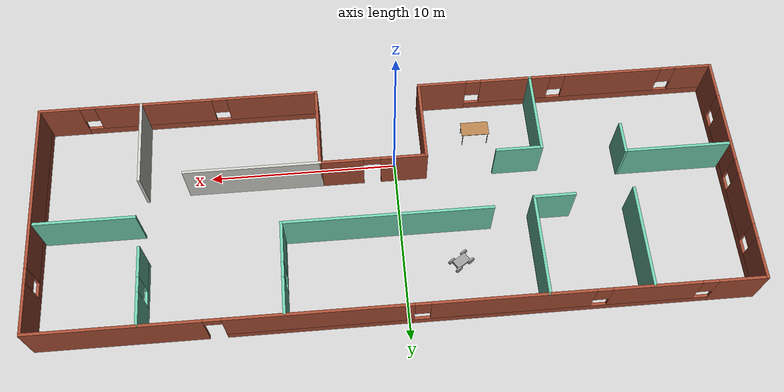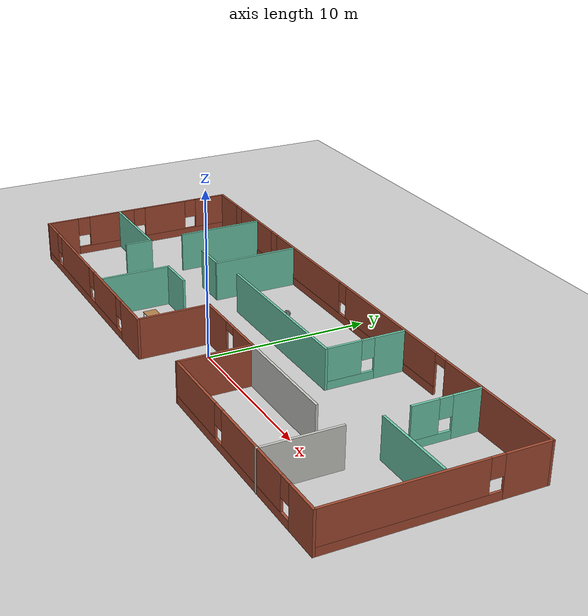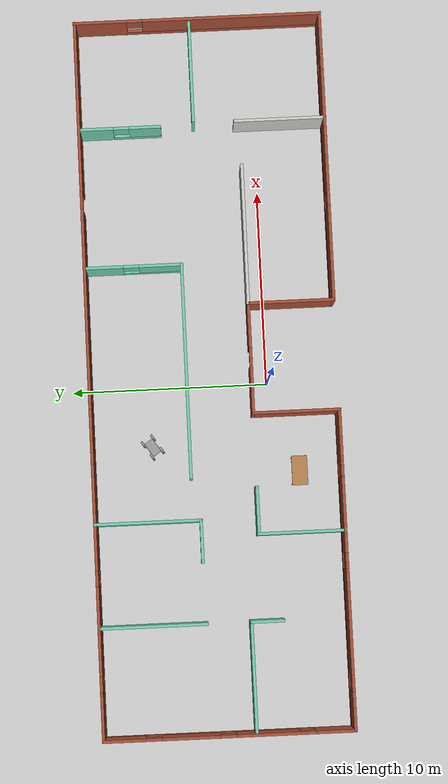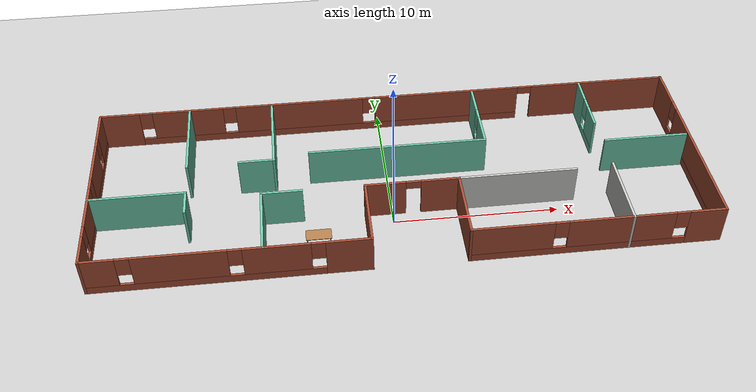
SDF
<sdf version="1.6">
 <world name="default">
  <model name="ground_plane">
   <static>1</static>
   <link name="link">
    <collision name="collision">
     <geometry><plane><normal>0 0 1</normal><size>100 100</size></plane></geometry>
     <surface><friction><ode><mu>100</mu><mu2>50</mu2></ode></friction></surface>
    </collision>
    <visual name="visual">
     <cast_shadows>0</cast_shadows>
     <geometry><plane><normal>0 0 1</normal><size>100 100</size></plane></geometry>
     <material>
      <script><uri>file://media/materials/scripts/gazebo.material</uri><name>Gazebo/Grey</name></script>
     </material>
    </visual>
   </link>
  </model>
  <model name="robot">
   <link name="link_0">
    <pose>0 -0 -0.015999 0 -0 0</pose>
    <inertial>
     <mass>1</mass>
     <inertia>
      <ixx>0.166667</ixx>
      <ixy>0</ixy>
      <ixz>0</ixz>
      <iyy>0.166667</iyy>
      <iyz>0</iyz>
      <izz>0.166667</izz>
     </inertia>
    </inertial>
    <visual name="visual">
     <geometry><box><size>0.8 0.5 0.2</size></box></geometry>
     <material>
      <lighting>1</lighting>
      <script><uri>file://media/materials/scripts/gazebo.material</uri><name>Gazebo/Grey</name></script>
      <shader type="pixel"><normal_map>__default__</normal_map></shader>
      <ambient>0.3 0.3 0.3 1</ambient>
      <diffuse>0.7 0.7 0.7 1</diffuse>
      <specular>0.01 0.01 0.01 1</specular>
      <emissive>0 0 0 1</emissive>
     </material>
    </visual>
    <collision name="collision">
     <geometry><box><size>0.8 0.5 0.2</size></box></geometry>
     <surface>
      <friction>
       <ode><mu>1</mu><mu2>1</mu2><fdir1>0 0 0</fdir1><slip1>0</slip1><slip2>0</slip2></ode>
       <torsional>
        <coefficient>1</coefficient>
        <patch_radius>0</patch_radius>
        <surface_radius>0</surface_radius>
        <use_patch_radius>1</use_patch_radius>
        <ode><slip>0</slip></ode>
       </torsional>
      </friction>
      <bounce><restitution_coefficient>0</restitution_coefficient><threshold>1e+06</threshold></bounce>
      <contact>
       <collide_without_contact>0</collide_without_contact>
       <collide_without_contact_bitmask>1</collide_without_contact_bitmask>
       <collide_bitmask>1</collide_bitmask>
       <ode>
        <soft_cfm>0</soft_cfm>
        <soft_erp>0.2</soft_erp>
        <kp>1e+13</kp>
        <kd>1</kd>
        <max_vel>0.01</max_vel>
        <min_depth>0</min_depth>
       </ode>
       <bullet>
        <split_impulse>1</split_impulse>
        <split_impulse_penetration_threshold>-0.01</split_impulse_penetration_threshold>
        <soft_cfm>0</soft_cfm>
        <soft_erp>0.2</soft_erp>
        <kp>1e+13</kp>
        <kd>1</kd>
       </bullet>
      </contact>
     </surface>
    </collision>
   </link>
   <link name="link_1">
    <pose>-0.4 -0.300019 0.003997 1.5707 -0 0</pose>
    <inertial>
     <mass>1</mass>
     <inertia><ixx>0.145833</ixx><ixy>0</ixy><ixz>0</ixz><iyy>0.145833</iyy><iyz>0</iyz><izz>0.125</izz></inertia>
    </inertial>
    <visual name="visual">
     <geometry><cylinder><radius>0.2</radius><length>0.1</length></cylinder></geometry>
     <material>
      <lighting>1</lighting>
      <script><uri>file://media/materials/scripts/gazebo.material</uri><name>Gazebo/Grey</name></script>
      <shader type="pixel"><normal_map>__default__</normal_map></shader>
      <ambient>0.3 0.3 0.3 1</ambient>
      <diffuse>0.7 0.7 0.7 1</diffuse>
      <specular>0.01 0.01 0.01 1</specular>
      <emissive>0 0 0 1</emissive>
     </material>
    </visual>
    <collision name="collision">
     <geometry><cylinder><radius>0.2</radius><length>0.1</length></cylinder></geometry>
     <surface>
      <friction>
       <ode><mu>1</mu><mu2>1</mu2><fdir1>0 0 0</fdir1><slip1>0</slip1><slip2>0</slip2></ode>
       <torsional>
        <coefficient>1</coefficient>
        <patch_radius>0</patch_radius>
        <surface_radius>0</surface_radius>
        <use_patch_radius>1</use_patch_radius>
        <ode><slip>0</slip></ode>
       </torsional>
      </friction>
      <bounce><restitution_coefficient>0</restitution_coefficient><threshold>1e+06</threshold></bounce>
      <contact>
       <collide_without_contact>0</collide_without_contact>
       <collide_without_contact_bitmask>1</collide_without_contact_bitmask>
       <collide_bitmask>1</collide_bitmask>
       <ode>
        <soft_cfm>0</soft_cfm>
        <soft_erp>0.2</soft_erp>
        <kp>1e+13</kp>
        <kd>1</kd>
        <max_vel>0.01</max_vel>
        <min_depth>0</min_depth>
       </ode>
       <bullet>
        <split_impulse>1</split_impulse>
        <split_impulse_penetration_threshold>-0.01</split_impulse_penetration_threshold>
        <soft_cfm>0</soft_cfm>
        <soft_erp>0.2</soft_erp>
        <kp>1e+13</kp>
        <kd>1</kd>
       </bullet>
      </contact>
     </surface>
    </collision>
   </link>
   <link name="link_1_clone">
    <pose>0.4 -0.300019 0.004001 1.5707 -0 0</pose>
    <inertial>
     <mass>1</mass>
     <inertia><ixx>0.145833</ixx><ixy>0</ixy><ixz>0</ixz><iyy>0.145833</iyy><iyz>0</iyz><izz>0.125</izz></inertia>
    </inertial>
    <visual name="visual">
     <geometry><cylinder><radius>0.2</radius><length>0.1</length></cylinder></geometry>
     <material>
      <lighting>1</lighting>
      <script><uri>file://media/materials/scripts/gazebo.material</uri><name>Gazebo/Grey</name></script>
      <shader type="pixel"><normal_map>__default__</normal_map></shader>
      <ambient>0.3 0.3 0.3 1</ambient>
      <diffuse>0.7 0.7 0.7 1</diffuse>
      <specular>0.01 0.01 0.01 1</specular>
      <emissive>0 0 0 1</emissive>
     </material>
    </visual>
    <collision name="collision">
     <geometry><cylinder><radius>0.2</radius><length>0.1</length></cylinder></geometry>
     <surface>
      <friction>
       <ode><mu>1</mu><mu2>1</mu2><fdir1>0 0 0</fdir1><slip1>0</slip1><slip2>0</slip2></ode>
       <torsional>
        <coefficient>1</coefficient>
        <patch_radius>0</patch_radius>
        <surface_radius>0</surface_radius>
        <use_patch_radius>1</use_patch_radius>
        <ode><slip>0</slip></ode>
       </torsional>
      </friction>
      <bounce><restitution_coefficient>0</restitution_coefficient><threshold>1e+06</threshold></bounce>
      <contact>
       <collide_without_contact>0</collide_without_contact>
       <collide_without_contact_bitmask>1</collide_without_contact_bitmask>
       <collide_bitmask>1</collide_bitmask>
       <ode>
        <soft_cfm>0</soft_cfm>
        <soft_erp>0.2</soft_erp>
        <kp>1e+13</kp>
        <kd>1</kd>
        <max_vel>0.01</max_vel>
        <min_depth>0</min_depth>
       </ode>
       <bullet>
        <split_impulse>1</split_impulse>
        <split_impulse_penetration_threshold>-0.01</split_impulse_penetration_threshold>
        <soft_cfm>0</soft_cfm>
        <soft_erp>0.2</soft_erp>
        <kp>1e+13</kp>
        <kd>1</kd>
       </bullet>
      </contact>
     </surface>
    </collision>
   </link>
   <link name="link_1_clone_1">
    <pose>0.4 0.300019 0.004001 1.5707 -0 0</pose>
    <inertial>
     <mass>1</mass>
     <inertia><ixx>0.145833</ixx><ixy>0</ixy><ixz>0</ixz><iyy>0.145833</iyy><iyz>0</iyz><izz>0.125</izz></inertia>
    </inertial>
    <visual name="visual">
     <geometry><cylinder><radius>0.2</radius><length>0.1</length></cylinder></geometry>
     <material>
      <lighting>1</lighting>
      <script><uri>file://media/materials/scripts/gazebo.material</uri><name>Gazebo/Grey</name></script>
      <shader type="pixel"><normal_map>__default__</normal_map></shader>
      <ambient>0.3 0.3 0.3 1</ambient>
      <diffuse>0.7 0.7 0.7 1</diffuse>
      <specular>0.01 0.01 0.01 1</specular>
      <emissive>0 0 0 1</emissive>
     </material>
    </visual>
    <collision name="collision">
     <geometry><cylinder><radius>0.2</radius><length>0.1</length></cylinder></geometry>
     <surface>
      <friction>
       <ode><mu>1</mu><mu2>1</mu2><fdir1>0 0 0</fdir1><slip1>0</slip1><slip2>0</slip2></ode>
       <torsional>
        <coefficient>1</coefficient>
        <patch_radius>0</patch_radius>
        <surface_radius>0</surface_radius>
        <use_patch_radius>1</use_patch_radius>
        <ode><slip>0</slip></ode>
       </torsional>
      </friction>
      <bounce><restitution_coefficient>0</restitution_coefficient><threshold>1e+06</threshold></bounce>
      <contact>
       <collide_without_contact>0</collide_without_contact>
       <collide_without_contact_bitmask>1</collide_without_contact_bitmask>
       <collide_bitmask>1</collide_bitmask>
       <ode>
        <soft_cfm>0</soft_cfm>
        <soft_erp>0.2</soft_erp>
        <kp>1e+13</kp>
        <kd>1</kd>
        <max_vel>0.01</max_vel>
        <min_depth>0</min_depth>
       </ode>
       <bullet>
        <split_impulse>1</split_impulse>
        <split_impulse_penetration_threshold>-0.01</split_impulse_penetration_threshold>
        <soft_cfm>0</soft_cfm>
        <soft_erp>0.2</soft_erp>
        <kp>1e+13</kp>
        <kd>1</kd>
       </bullet>
      </contact>
     </surface>
    </collision>
   </link>
   <link name="link_1_clone_1_clone">
    <pose>-0.4 0.300019 0.004001 1.5707 -0 0</pose>
    <inertial>
     <mass>1</mass>
     <inertia><ixx>0.145833</ixx><ixy>0</ixy><ixz>0</ixz><iyy>0.145833</iyy><iyz>0</iyz><izz>0.125</izz></inertia>
    </inertial>
    <visual name="visual">
     <geometry><cylinder><radius>0.2</radius><length>0.1</length></cylinder></geometry>
     <material>
      <lighting>1</lighting>
      <script><uri>file://media/materials/scripts/gazebo.material</uri><name>Gazebo/Grey</name></script>
      <shader type="pixel"><normal_map>__default__</normal_map></shader>
      <ambient>0.3 0.3 0.3 1</ambient>
      <diffuse>0.7 0.7 0.7 1</diffuse>
      <specular>0.01 0.01 0.01 1</specular>
      <emissive>0 0 0 1</emissive>
     </material>
    </visual>
    <collision name="collision">
     <geometry><cylinder><radius>0.2</radius><length>0.1</length></cylinder></geometry>
     <surface>
      <friction>
       <ode><mu>1</mu><mu2>1</mu2><fdir1>0 0 0</fdir1><slip1>0</slip1><slip2>0</slip2></ode>
       <torsional>
        <coefficient>1</coefficient>
        <patch_radius>0</patch_radius>
        <surface_radius>0</surface_radius>
        <use_patch_radius>1</use_patch_radius>
        <ode><slip>0</slip></ode>
       </torsional>
      </friction>
      <bounce><restitution_coefficient>0</restitution_coefficient><threshold>1e+06</threshold></bounce>
      <contact>
       <collide_without_contact>0</collide_without_contact>
       <collide_without_contact_bitmask>1</collide_without_contact_bitmask>
       <collide_bitmask>1</collide_bitmask>
       <ode>
        <soft_cfm>0</soft_cfm>
        <soft_erp>0.2</soft_erp>
        <kp>1e+13</kp>
        <kd>1</kd>
        <max_vel>0.01</max_vel>
        <min_depth>0</min_depth>
       </ode>
       <bullet>
        <split_impulse>1</split_impulse>
        <split_impulse_penetration_threshold>-0.01</split_impulse_penetration_threshold>
        <soft_cfm>0</soft_cfm>
        <soft_erp>0.2</soft_erp>
        <kp>1e+13</kp>
        <kd>1</kd>
       </bullet>
      </contact>
     </surface>
    </collision>
   </link>
   <joint name="link_0_JOINT_0" type="revolute">
    <parent>link_0</parent>
    <child>link_1</child>
    <axis>
     <xyz>0 0 1</xyz>
     <use_parent_model_frame>0</use_parent_model_frame>
     <limit>
      <lower>-1.79769e+308</lower>
      <upper>1.79769e+308</upper>
      <effort>-1</effort>
      <velocity>-1</velocity>
     </limit>
     <dynamics>
      <spring_reference>0</spring_reference>
      <spring_stiffness>0</spring_stiffness>
      <damping>0</damping>
     </dynamics>
    </axis>
    <physics>
     <ode><limit><cfm>0</cfm><erp>0.2</erp></limit><suspension><cfm>0</cfm><erp>0.2</erp></suspension></ode>
    </physics>
   </joint>
   <joint name="link_0_JOINT_3" type="revolute">
    <parent>link_0</parent>
    <child>link_1_clone_1_clone</child>
    <axis>
     <xyz>0 0 1</xyz>
     <use_parent_model_frame>0</use_parent_model_frame>
     <limit>
      <lower>-1.79769e+308</lower>
      <upper>1.79769e+308</upper>
      <effort>-1</effort>
      <velocity>-1</velocity>
     </limit>
     <dynamics>
      <spring_reference>0</spring_reference>
      <spring_stiffness>0</spring_stiffness>
      <damping>0</damping>
     </dynamics>
    </axis>
    <physics>
     <ode><limit><cfm>0</cfm><erp>0.2</erp></limit><suspension><cfm>0</cfm><erp>0.2</erp></suspension></ode>
    </physics>
   </joint>
   <joint name="link_0_JOINT_5" type="revolute">
    <parent>link_0</parent>
    <child>link_1_clone_1</child>
    <axis>
     <xyz>0 0 1</xyz>
     <use_parent_model_frame>0</use_parent_model_frame>
     <limit>
      <lower>-1.79769e+308</lower>
      <upper>1.79769e+308</upper>
      <effort>-1</effort>
      <velocity>-1</velocity>
     </limit>
     <dynamics>
      <spring_reference>0</spring_reference>
      <spring_stiffness>0</spring_stiffness>
      <damping>0</damping>
     </dynamics>
    </axis>
    <physics>
     <ode><limit><cfm>0</cfm><erp>0.2</erp></limit><suspension><cfm>0</cfm><erp>0.2</erp></suspension></ode>
    </physics>
   </joint>
   <joint name="link_0_JOINT_6" type="revolute">
    <parent>link_0</parent>
    <child>link_1_clone</child>
    <axis>
     <xyz>0 0 1</xyz>
     <use_parent_model_frame>0</use_parent_model_frame>
     <limit>
      <lower>-1.79769e+308</lower>
      <upper>1.79769e+308</upper>
      <effort>-1</effort>
      <velocity>-1</velocity>
     </limit>
     <dynamics>
      <spring_reference>0</spring_reference>
      <spring_stiffness>0</spring_stiffness>
      <damping>0</damping>
     </dynamics>
    </axis>
    <physics>
     <ode><limit><cfm>0</cfm><erp>0.2</erp></limit><suspension><cfm>0</cfm><erp>0.2</erp></suspension></ode>
    </physics>
   </joint>
   <static>0</static>
   <pose>-2.99375 6.00403 0.196005 -4e-06 5e-06 -2.55933</pose>
  </model>
  <model name="office">
   <pose>0.5777 2.7439 0 0 -0 0</pose>
   <link name="Wall_27">
    <pose>18.275 0.006607 0 0 0 -1.5708</pose>
    <visual name="Wall_27_Visual_0">
     <pose>-4.99868 0 1.25 0 -0 0</pose>
     <geometry><box><size>2.75264 0.15 2.5</size></box></geometry>
     <material>
      <script><uri>file://media/materials/scripts/gazebo.material</uri><name>Gazebo/Bricks</name></script>
      <ambient>1 1 1 1</ambient>
     </material>
     <meta><layer>0</layer></meta>
    </visual>
    <collision name="Wall_27_Collision_0">
     <geometry><box><size>2.75264 0.15 2.5</size></box></geometry>
     <pose>-4.99868 0 1.25 0 -0 0</pose>
    </collision>
    <visual name="Wall_27_Visual_1">
     <pose>1.37632 0 0.25 0 -0 0</pose>
     <geometry><box><size>9.99736 0.15 0.5</size></box></geometry>
     <material>
      <script><uri>file://media/materials/scripts/gazebo.material</uri><name>Gazebo/Bricks</name></script>
      <ambient>1 1 1 1</ambient>
     </material>
     <meta><layer>0</layer></meta>
    </visual>
    <collision name="Wall_27_Collision_1">
     <geometry><box><size>9.99736 0.15 0.5</size></box></geometry>
     <pose>1.37632 0 0.25 0 -0 0</pose>
    </collision>
    <visual name="Wall_27_Visual_2">
     <pose>1.77632 0 1.5 0 -0 0</pose>
     <geometry><box><size>9.19736 0.15 2</size></box></geometry>
     <material>
      <script><uri>file://media/materials/scripts/gazebo.material</uri><name>Gazebo/Bricks</name></script>
      <ambient>1 1 1 1</ambient>
     </material>
     <meta><layer>0</layer></meta>
    </visual>
    <collision name="Wall_27_Collision_2">
     <geometry><box><size>9.19736 0.15 2</size></box></geometry>
     <pose>1.77632 0 1.5 0 -0 0</pose>
    </collision>
    <visual name="Wall_27_Visual_3">
     <pose>-3.22236 0 1.9 0 -0 0</pose>
     <geometry><box><size>0.8 0.15 1.2</size></box></geometry>
     <material>
      <script><uri>file://media/materials/scripts/gazebo.material</uri><name>Gazebo/Bricks</name></script>
      <ambient>1 1 1 1</ambient>
     </material>
     <meta><layer>0</layer></meta>
    </visual>
    <collision name="Wall_27_Collision_3">
     <geometry><box><size>0.8 0.15 1.2</size></box></geometry>
     <pose>-3.22236 0 1.9 0 -0 0</pose>
    </collision>
   </link>
   <link name="Wall_28">
    <pose>10.85 -6.29339 0 0 -0 3.14159</pose>
    <visual name="Wall_28_Visual_0">
     <pose>-6.39219 0 1.25 0 -0 0</pose>
     <geometry><box><size>2.21562 0.15 2.5</size></box></geometry>
     <material>
      <script><uri>file://media/materials/scripts/gazebo.material</uri><name>Gazebo/Bricks</name></script>
      <ambient>1 1 1 1</ambient>
     </material>
     <meta><layer>0</layer></meta>
    </visual>
    <collision name="Wall_28_Collision_0">
     <geometry><box><size>2.21562 0.15 2.5</size></box></geometry>
     <pose>-6.39219 0 1.25 0 -0 0</pose>
    </collision>
    <visual name="Wall_28_Visual_1">
     <pose>1.10781 0 0.25 0 -0 0</pose>
     <geometry><box><size>12.7844 0.15 0.5</size></box></geometry>
     <material>
      <script><uri>file://media/materials/scripts/gazebo.material</uri><name>Gazebo/Bricks</name></script>
      <ambient>1 1 1 1</ambient>
     </material>
     <meta><layer>0</layer></meta>
    </visual>
    <collision name="Wall_28_Collision_1">
     <geometry><box><size>12.7844 0.15 0.5</size></box></geometry>
     <pose>1.10781 0 0.25 0 -0 0</pose>
    </collision>
    <visual name="Wall_28_Visual_2">
     <pose>-1.34653 0 1.5 0 -0 0</pose>
     <geometry><box><size>6.27571 0.15 2</size></box></geometry>
     <material>
      <script><uri>file://media/materials/scripts/gazebo.material</uri><name>Gazebo/Bricks</name></script>
      <ambient>1 1 1 1</ambient>
     </material>
     <meta><layer>0</layer></meta>
    </visual>
    <collision name="Wall_28_Collision_2">
     <geometry><box><size>6.27571 0.15 2</size></box></geometry>
     <pose>-1.34653 0 1.5 0 -0 0</pose>
    </collision>
    <visual name="Wall_28_Visual_3">
     <pose>5.04566 0 1.5 0 -0 0</pose>
     <geometry><box><size>4.90868 0.15 2</size></box></geometry>
     <material>
      <script><uri>file://media/materials/scripts/gazebo.material</uri><name>Gazebo/Bricks</name></script>
      <ambient>1 1 1 1</ambient>
     </material>
     <meta><layer>0</layer></meta>
    </visual>
    <collision name="Wall_28_Collision_3">
     <geometry><box><size>4.90868 0.15 2</size></box></geometry>
     <pose>5.04566 0 1.5 0 -0 0</pose>
    </collision>
    <visual name="Wall_28_Visual_4">
     <pose>-4.88438 0 1.9 0 -0 0</pose>
     <geometry><box><size>0.8 0.15 1.2</size></box></geometry>
     <material>
      <script><uri>file://media/materials/scripts/gazebo.material</uri><name>Gazebo/Bricks</name></script>
      <ambient>1 1 1 1</ambient>
     </material>
     <meta><layer>0</layer></meta>
    </visual>
    <collision name="Wall_28_Collision_4">
     <geometry><box><size>0.8 0.15 1.2</size></box></geometry>
     <pose>-4.88438 0 1.9 0 -0 0</pose>
    </collision>
    <visual name="Wall_28_Visual_5">
     <pose>2.19132 0 1.9 0 -0 0</pose>
     <geometry><box><size>0.8 0.15 1.2</size></box></geometry>
     <material>
      <script><uri>file://media/materials/scripts/gazebo.material</uri><name>Gazebo/Bricks</name></script>
      <ambient>1 1 1 1</ambient>
     </material>
     <meta><layer>0</layer></meta>
    </visual>
    <collision name="Wall_28_Collision_5">
     <geometry><box><size>0.8 0.15 1.2</size></box></geometry>
     <pose>2.19132 0 1.9 0 -0 0</pose>
    </collision>
   </link>
   <link name="Wall_29">
    <collision name="Wall_29_Collision">
     <geometry><box><size>4.5 0.15 2.5</size></box></geometry>
     <pose>0 0 1.25 0 -0 0</pose>
    </collision>
    <visual name="Wall_29_Visual">
     <pose>0 0 1.25 0 -0 0</pose>
     <geometry><box><size>4.5 0.15 2.5</size></box></geometry>
     <material>
      <script><uri>file://media/materials/scripts/gazebo.material</uri><name>Gazebo/Bricks</name></script>
      <ambient>1 1 1 1</ambient>
     </material>
     <meta><layer>0</layer></meta>
    </visual>
    <pose>3.425 -4.11839 0 0 -0 1.5708</pose>
   </link>
   <link name="Wall_30">
    <pose>0.625 -1.94339 0 0 -0 3.14159</pose>
    <visual name="Wall_30_Visual_0">
     <pose>-1.6967 0 1.25 0 -0 0</pose>
     <geometry><box><size>2.3566 0.15 2.5</size></box></geometry>
     <material>
      <script><uri>file://media/materials/scripts/gazebo.material</uri><name>Gazebo/Bricks</name></script>
      <ambient>1 1 1 1</ambient>
     </material>
     <meta><layer>0</layer></meta>
    </visual>
    <collision name="Wall_30_Collision_0">
     <geometry><box><size>2.3566 0.15 2.5</size></box></geometry>
     <pose>-1.6967 0 1.25 0 -0 0</pose>
    </collision>
    <visual name="Wall_30_Visual_1">
     <pose>1.6283 0 1.25 0 -0 0</pose>
     <geometry><box><size>2.4934 0.15 2.5</size></box></geometry>
     <material>
      <script><uri>file://media/materials/scripts/gazebo.material</uri><name>Gazebo/Bricks</name></script>
      <ambient>1 1 1 1</ambient>
     </material>
     <meta><layer>0</layer></meta>
    </visual>
    <collision name="Wall_30_Collision_1">
     <geometry><box><size>2.4934 0.15 2.5</size></box></geometry>
     <pose>1.6283 0 1.25 0 -0 0</pose>
    </collision>
    <visual name="Wall_30_Visual_2">
     <pose>-0.068397 0 2.25 0 -0 0</pose>
     <geometry><box><size>0.9 0.15 0.5</size></box></geometry>
     <material>
      <script><uri>file://media/materials/scripts/gazebo.material</uri><name>Gazebo/Bricks</name></script>
      <ambient>1 1 1 1</ambient>
     </material>
     <meta><layer>0</layer></meta>
    </visual>
    <collision name="Wall_30_Collision_2">
     <geometry><box><size>0.9 0.15 0.5</size></box></geometry>
     <pose>-0.068397 0 2.25 0 -0 0</pose>
    </collision>
   </link>
   <link name="Wall_31">
    <collision name="Wall_31_Collision">
     <geometry><box><size>4.5 0.15 2.5</size></box></geometry>
     <pose>0 0 1.25 0 -0 0</pose>
    </collision>
    <visual name="Wall_31_Visual">
     <pose>0 0 1.25 0 -0 0</pose>
     <geometry><box><size>4.5 0.15 2.5</size></box></geometry>
     <material>
      <script><uri>file://media/materials/scripts/gazebo.material</uri><name>Gazebo/Bricks</name></script>
      <ambient>1 1 1 1</ambient>
     </material>
     <meta><layer>0</layer></meta>
    </visual>
    <pose>-2.175 -4.11839 0 0 0 -1.5708</pose>
   </link>
   <link name="Wall_32">
    <pose>-10.225 -6.29339 0 0 -0 3.14159</pose>
    <visual name="Wall_32_Visual_0">
     <pose>-6.78571 0 1.25 0 -0 0</pose>
     <geometry><box><size>2.67859 0.15 2.5</size></box></geometry>
     <material>
      <script><uri>file://media/materials/scripts/gazebo.material</uri><name>Gazebo/Bricks</name></script>
      <ambient>1 1 1 1</ambient>
     </material>
     <meta><layer>0</layer></meta>
    </visual>
    <collision name="Wall_32_Collision_0">
     <geometry><box><size>2.67859 0.15 2.5</size></box></geometry>
     <pose>-6.78571 0 1.25 0 -0 0</pose>
    </collision>
    <visual name="Wall_32_Visual_1">
     <pose>1.33929 0 0.25 0 -0 0</pose>
     <geometry><box><size>13.5714 0.15 0.5</size></box></geometry>
     <material>
      <script><uri>file://media/materials/scripts/gazebo.material</uri><name>Gazebo/Bricks</name></script>
      <ambient>1 1 1 1</ambient>
     </material>
     <meta><layer>0</layer></meta>
    </visual>
    <collision name="Wall_32_Collision_1">
     <geometry><box><size>13.5714 0.15 0.5</size></box></geometry>
     <pose>1.33929 0 0.25 0 -0 0</pose>
    </collision>
    <visual name="Wall_32_Visual_2">
     <pose>-2.72912 0 1.5 0 -0 0</pose>
     <geometry><box><size>3.83459 0.15 2</size></box></geometry>
     <material>
      <script><uri>file://media/materials/scripts/gazebo.material</uri><name>Gazebo/Bricks</name></script>
      <ambient>1 1 1 1</ambient>
     </material>
     <meta><layer>0</layer></meta>
    </visual>
    <collision name="Wall_32_Collision_2">
     <geometry><box><size>3.83459 0.15 2</size></box></geometry>
     <pose>-2.72912 0 1.5 0 -0 0</pose>
    </collision>
    <visual name="Wall_32_Visual_3">
     <pose>2.64842 0 1.5 0 -0 0</pose>
     <geometry><box><size>5.32049 0.15 2</size></box></geometry>
     <material>
      <script><uri>file://media/materials/scripts/gazebo.material</uri><name>Gazebo/Bricks</name></script>
      <ambient>1 1 1 1</ambient>
     </material>
     <meta><layer>0</layer></meta>
    </visual>
    <collision name="Wall_32_Collision_3">
     <geometry><box><size>5.32049 0.15 2</size></box></geometry>
     <pose>2.64842 0 1.5 0 -0 0</pose>
    </collision>
    <visual name="Wall_32_Visual_4">
     <pose>7.11683 0 1.5 0 -0 0</pose>
     <geometry><box><size>2.01634 0.15 2</size></box></geometry>
     <material>
      <script><uri>file://media/materials/scripts/gazebo.material</uri><name>Gazebo/Bricks</name></script>
      <ambient>1 1 1 1</ambient>
     </material>
     <meta><layer>0</layer></meta>
    </visual>
    <collision name="Wall_32_Collision_4">
     <geometry><box><size>2.01634 0.15 2</size></box></geometry>
     <pose>7.11683 0 1.5 0 -0 0</pose>
    </collision>
    <visual name="Wall_32_Visual_5">
     <pose>-5.04641 0 1.9 0 -0 0</pose>
     <geometry><box><size>0.8 0.15 1.2</size></box></geometry>
     <material>
      <script><uri>file://media/materials/scripts/gazebo.material</uri><name>Gazebo/Bricks</name></script>
      <ambient>1 1 1 1</ambient>
     </material>
     <meta><layer>0</layer></meta>
    </visual>
    <collision name="Wall_32_Collision_5">
     <geometry><box><size>0.8 0.15 1.2</size></box></geometry>
     <pose>-5.04641 0 1.9 0 -0 0</pose>
    </collision>
    <visual name="Wall_32_Visual_6">
     <pose>-0.411825 0 1.9 0 -0 0</pose>
     <geometry><box><size>0.8 0.15 1.2</size></box></geometry>
     <material>
      <script><uri>file://media/materials/scripts/gazebo.material</uri><name>Gazebo/Bricks</name></script>
      <ambient>1 1 1 1</ambient>
     </material>
     <meta><layer>0</layer></meta>
    </visual>
    <collision name="Wall_32_Collision_6">
     <geometry><box><size>0.8 0.15 1.2</size></box></geometry>
     <pose>-0.411825 0 1.9 0 -0 0</pose>
    </collision>
    <visual name="Wall_32_Visual_7">
     <pose>5.70866 0 1.9 0 -0 0</pose>
     <geometry><box><size>0.8 0.15 1.2</size></box></geometry>
     <material>
      <script><uri>file://media/materials/scripts/gazebo.material</uri><name>Gazebo/Bricks</name></script>
      <ambient>1 1 1 1</ambient>
     </material>
     <meta><layer>0</layer></meta>
    </visual>
    <collision name="Wall_32_Collision_7">
     <geometry><box><size>0.8 0.15 1.2</size></box></geometry>
     <pose>5.70866 0 1.9 0 -0 0</pose>
    </collision>
   </link>
   <link name="Wall_33">
    <pose>-18.275 0.006607 0 0 -0 1.5708</pose>
    <visual name="Wall_33_Visual_0">
     <pose>-5.34955 0 1.25 0 -0 0</pose>
     <geometry><box><size>2.0509 0.15 2.5</size></box></geometry>
     <material>
      <script><uri>file://media/materials/scripts/gazebo.material</uri><name>Gazebo/Bricks</name></script>
      <ambient>1 1 1 1</ambient>
     </material>
     <meta><layer>0</layer></meta>
    </visual>
    <collision name="Wall_33_Collision_0">
     <geometry><box><size>2.0509 0.15 2.5</size></box></geometry>
     <pose>-5.34955 0 1.25 0 -0 0</pose>
    </collision>
    <visual name="Wall_33_Visual_1">
     <pose>1.02545 0 0.25 0 -0 0</pose>
     <geometry><box><size>10.6991 0.15 0.5</size></box></geometry>
     <material>
      <script><uri>file://media/materials/scripts/gazebo.material</uri><name>Gazebo/Bricks</name></script>
      <ambient>1 1 1 1</ambient>
     </material>
     <meta><layer>0</layer></meta>
    </visual>
    <collision name="Wall_33_Collision_1">
     <geometry><box><size>10.6991 0.15 0.5</size></box></geometry>
     <pose>1.02545 0 0.25 0 -0 0</pose>
    </collision>
    <visual name="Wall_33_Visual_2">
     <pose>-1.9429 0 1.5 0 -0 0</pose>
     <geometry><box><size>3.1624 0.15 2</size></box></geometry>
     <material>
      <script><uri>file://media/materials/scripts/gazebo.material</uri><name>Gazebo/Bricks</name></script>
      <ambient>1 1 1 1</ambient>
     </material>
     <meta><layer>0</layer></meta>
    </visual>
    <collision name="Wall_33_Collision_2">
     <geometry><box><size>3.1624 0.15 2</size></box></geometry>
     <pose>-1.9429 0 1.5 0 -0 0</pose>
    </collision>
    <visual name="Wall_33_Visual_3">
     <pose>1.91336 0 1.5 0 -0 0</pose>
     <geometry><box><size>2.95012 0.15 2</size></box></geometry>
     <material>
      <script><uri>file://media/materials/scripts/gazebo.material</uri><name>Gazebo/Bricks</name></script>
      <ambient>1 1 1 1</ambient>
     </material>
     <meta><layer>0</layer></meta>
    </visual>
    <collision name="Wall_33_Collision_3">
     <geometry><box><size>2.95012 0.15 2</size></box></geometry>
     <pose>1.91336 0 1.5 0 -0 0</pose>
    </collision>
    <visual name="Wall_33_Visual_4">
     <pose>5.28171 0 1.5 0 -0 0</pose>
     <geometry><box><size>2.18658 0.15 2</size></box></geometry>
     <material>
      <script><uri>file://media/materials/scripts/gazebo.material</uri><name>Gazebo/Bricks</name></script>
      <ambient>1 1 1 1</ambient>
     </material>
     <meta><layer>0</layer></meta>
    </visual>
    <collision name="Wall_33_Collision_4">
     <geometry><box><size>2.18658 0.15 2</size></box></geometry>
     <pose>5.28171 0 1.5 0 -0 0</pose>
    </collision>
    <visual name="Wall_33_Visual_5">
     <pose>-3.9241 0 1.9 0 -0 0</pose>
     <geometry><box><size>0.8 0.15 1.2</size></box></geometry>
     <material>
      <script><uri>file://media/materials/scripts/gazebo.material</uri><name>Gazebo/Bricks</name></script>
      <ambient>1 1 1 1</ambient>
     </material>
     <meta><layer>0</layer></meta>
    </visual>
    <collision name="Wall_33_Collision_5">
     <geometry><box><size>0.8 0.15 1.2</size></box></geometry>
     <pose>-3.9241 0 1.9 0 -0 0</pose>
    </collision>
    <visual name="Wall_33_Visual_6">
     <pose>0.038294 0 1.9 0 -0 0</pose>
     <geometry><box><size>0.8 0.15 1.2</size></box></geometry>
     <material>
      <script><uri>file://media/materials/scripts/gazebo.material</uri><name>Gazebo/Bricks</name></script>
      <ambient>1 1 1 1</ambient>
     </material>
     <meta><layer>0</layer></meta>
    </visual>
    <collision name="Wall_33_Collision_6">
     <geometry><box><size>0.8 0.15 1.2</size></box></geometry>
     <pose>0.038294 0 1.9 0 -0 0</pose>
    </collision>
    <visual name="Wall_33_Visual_7">
     <pose>3.78842 0 1.9 0 -0 0</pose>
     <geometry><box><size>0.8 0.15 1.2</size></box></geometry>
     <material>
      <script><uri>file://media/materials/scripts/gazebo.material</uri><name>Gazebo/Bricks</name></script>
      <ambient>1 1 1 1</ambient>
     </material>
     <meta><layer>0</layer></meta>
    </visual>
    <collision name="Wall_33_Collision_7">
     <geometry><box><size>0.8 0.15 1.2</size></box></geometry>
     <pose>3.78842 0 1.9 0 -0 0</pose>
    </collision>
   </link>
   <link name="Wall_35">
    <pose>0 6.30661 0 0 -0 0</pose>
    <visual name="Wall_35_Visual_0">
     <pose>-17.0942 0 1.25 0 -0 0</pose>
     <geometry><box><size>2.51164 0.15 2.5</size></box></geometry>
     <material>
      <script><uri>file://media/materials/scripts/gazebo.material</uri><name>Gazebo/Bricks</name></script>
      <ambient>1 1 1 1</ambient>
     </material>
     <meta><layer>0</layer></meta>
    </visual>
    <collision name="Wall_35_Collision_0">
     <geometry><box><size>2.51164 0.15 2.5</size></box></geometry>
     <pose>-17.0942 0 1.25 0 -0 0</pose>
    </collision>
    <visual name="Wall_35_Visual_1">
     <pose>13.9356 0 1.25 0 -0 0</pose>
     <geometry><box><size>8.82887 0.15 2.5</size></box></geometry>
     <material>
      <script><uri>file://media/materials/scripts/gazebo.material</uri><name>Gazebo/Bricks</name></script>
      <ambient>1 1 1 1</ambient>
     </material>
     <meta><layer>0</layer></meta>
    </visual>
    <collision name="Wall_35_Collision_1">
     <geometry><box><size>8.82887 0.15 2.5</size></box></geometry>
     <pose>13.9356 0 1.25 0 -0 0</pose>
    </collision>
    <visual name="Wall_35_Visual_2">
     <pose>-3.60861 0 0.25 0 -0 0</pose>
     <geometry><box><size>24.4595 0.15 0.5</size></box></geometry>
     <material>
      <script><uri>file://media/materials/scripts/gazebo.material</uri><name>Gazebo/Bricks</name></script>
      <ambient>1 1 1 1</ambient>
     </material>
     <meta><layer>0</layer></meta>
    </visual>
    <collision name="Wall_35_Collision_2">
     <geometry><box><size>24.4595 0.15 0.5</size></box></geometry>
     <pose>-3.60861 0 0.25 0 -0 0</pose>
    </collision>
    <visual name="Wall_35_Visual_3">
     <pose>-12.8027 0 1.5 0 -0 0</pose>
     <geometry><box><size>4.4714 0.15 2</size></box></geometry>
     <material>
      <script><uri>file://media/materials/scripts/gazebo.material</uri><name>Gazebo/Bricks</name></script>
      <ambient>1 1 1 1</ambient>
     </material>
     <meta><layer>0</layer></meta>
    </visual>
    <collision name="Wall_35_Collision_3">
     <geometry><box><size>4.4714 0.15 2</size></box></geometry>
     <pose>-12.8027 0 1.5 0 -0 0</pose>
    </collision>
    <visual name="Wall_35_Visual_4">
     <pose>-5.68356 0 1.5 0 -0 0</pose>
     <geometry><box><size>8.16679 0.15 2</size></box></geometry>
     <material>
      <script><uri>file://media/materials/scripts/gazebo.material</uri><name>Gazebo/Bricks</name></script>
      <ambient>1 1 1 1</ambient>
     </material>
     <meta><layer>0</layer></meta>
    </visual>
    <collision name="Wall_35_Collision_4">
     <geometry><box><size>8.16679 0.15 2</size></box></geometry>
     <pose>-5.68356 0 1.5 0 -0 0</pose>
    </collision>
    <visual name="Wall_35_Visual_5">
     <pose>3.91048 0 1.5 0 -0 0</pose>
     <geometry><box><size>9.4213 0.15 2</size></box></geometry>
     <material>
      <script><uri>file://media/materials/scripts/gazebo.material</uri><name>Gazebo/Bricks</name></script>
      <ambient>1 1 1 1</ambient>
     </material>
     <meta><layer>0</layer></meta>
    </visual>
    <collision name="Wall_35_Collision_5">
     <geometry><box><size>9.4213 0.15 2</size></box></geometry>
     <pose>3.91048 0 1.5 0 -0 0</pose>
    </collision>
    <visual name="Wall_35_Visual_6">
     <pose>-15.4384 0 1.9 0 -0 0</pose>
     <geometry><box><size>0.8 0.15 1.2</size></box></geometry>
     <material>
      <script><uri>file://media/materials/scripts/gazebo.material</uri><name>Gazebo/Bricks</name></script>
      <ambient>1 1 1 1</ambient>
     </material>
     <meta><layer>0</layer></meta>
    </visual>
    <collision name="Wall_35_Collision_6">
     <geometry><box><size>0.8 0.15 1.2</size></box></geometry>
     <pose>-15.4384 0 1.9 0 -0 0</pose>
    </collision>
    <visual name="Wall_35_Visual_7">
     <pose>-10.167 0 1.9 0 -0 0</pose>
     <geometry><box><size>0.8 0.15 1.2</size></box></geometry>
     <material>
      <script><uri>file://media/materials/scripts/gazebo.material</uri><name>Gazebo/Bricks</name></script>
      <ambient>1 1 1 1</ambient>
     </material>
     <meta><layer>0</layer></meta>
    </visual>
    <collision name="Wall_35_Collision_7">
     <geometry><box><size>0.8 0.15 1.2</size></box></geometry>
     <pose>-10.167 0 1.9 0 -0 0</pose>
    </collision>
    <visual name="Wall_35_Visual_8">
     <pose>-1.20017 0 1.9 0 -0 0</pose>
     <geometry><box><size>0.8 0.15 1.2</size></box></geometry>
     <material>
      <script><uri>file://media/materials/scripts/gazebo.material</uri><name>Gazebo/Bricks</name></script>
      <ambient>1 1 1 1</ambient>
     </material>
     <meta><layer>0</layer></meta>
    </visual>
    <collision name="Wall_35_Collision_8">
     <geometry><box><size>0.8 0.15 1.2</size></box></geometry>
     <pose>-1.20017 0 1.9 0 -0 0</pose>
    </collision>
    <visual name="Wall_35_Visual_9">
     <pose>9.07113 0 2.25 0 -0 0</pose>
     <geometry><box><size>0.9 0.15 0.5</size></box></geometry>
     <material>
      <script><uri>file://media/materials/scripts/gazebo.material</uri><name>Gazebo/Bricks</name></script>
      <ambient>1 1 1 1</ambient>
     </material>
     <meta><layer>0</layer></meta>
    </visual>
    <collision name="Wall_35_Collision_9">
     <geometry><box><size>0.9 0.15 0.5</size></box></geometry>
     <pose>9.07113 0 2.25 0 -0 0</pose>
    </collision>
   </link>
   <link name="Wall_38">
    <collision name="Wall_38_Collision">
     <geometry><box><size>5.75 0.15 2.5</size></box></geometry>
     <pose>0 0 1.25 0 -0 0</pose>
    </collision>
    <visual name="Wall_38_Visual">
     <pose>0 0 1.25 0 -0 0</pose>
     <geometry><box><size>5.75 0.15 2.5</size></box></geometry>
     <material>
      <script><uri>file://media/materials/scripts/gazebo.material</uri><name>Gazebo/Grey</name></script>
      <ambient>0.435294 0.796078 0.67451 1</ambient>
     </material>
     <meta><layer>0</layer></meta>
    </visual>
    <pose>-15.4596 -1.35361 0 0 -0 0</pose>
   </link>
   <link name="Wall_39">
    <collision name="Wall_39_Collision">
     <geometry><box><size>1.75 0.15 2.5</size></box></geometry>
     <pose>0 0 1.25 0 -0 0</pose>
    </collision>
    <visual name="Wall_39_Visual">
     <pose>0 0 1.25 0 -0 0</pose>
     <geometry><box><size>1.75 0.15 2.5</size></box></geometry>
     <material>
      <script><uri>file://media/materials/scripts/gazebo.material</uri><name>Gazebo/Grey</name></script>
      <ambient>0.435294 0.796078 0.67451 1</ambient>
     </material>
     <meta><layer>0</layer></meta>
    </visual>
    <pose>-12.6596 -2.15361 0 0 0 -1.5708</pose>
   </link>
   <link name="Wall_41">
    <collision name="Wall_41_Collision">
     <geometry><box><size>5.5 0.15 2.5</size></box></geometry>
     <pose>0 0 1.25 0 -0 0</pose>
    </collision>
    <visual name="Wall_41_Visual">
     <pose>0 0 1.25 0 -0 0</pose>
     <geometry><box><size>5.5 0.15 2.5</size></box></geometry>
     <material>
      <script><uri>file://media/materials/scripts/gazebo.material</uri><name>Gazebo/Grey</name></script>
      <ambient>0.435294 0.796078 0.67451 1</ambient>
     </material>
     <meta><layer>0</layer></meta>
    </visual>
    <pose>-12.6605 3.57008 0 0 0 -1.5708</pose>
   </link>
   <link name="Wall_43">
    <collision name="Wall_43_Collision">
     <geometry><box><size>2.25 0.15 2.5</size></box></geometry>
     <pose>0 0 1.25 0 -0 0</pose>
    </collision>
    <visual name="Wall_43_Visual">
     <pose>0 0 1.25 0 -0 0</pose>
     <geometry><box><size>2.25 0.15 2.5</size></box></geometry>
     <material>
      <script><uri>file://media/materials/scripts/gazebo.material</uri><name>Gazebo/Grey</name></script>
      <ambient>0.435294 0.796078 0.67451 1</ambient>
     </material>
     <meta><layer>0</layer></meta>
    </visual>
    <pose>-8.50339 0.953682 0 0 -0 0</pose>
   </link>
   <link name="Wall_44">
    <collision name="Wall_44_Collision">
     <geometry><box><size>5.5 0.15 2.5</size></box></geometry>
     <pose>0 0 1.25 0 -0 0</pose>
    </collision>
    <visual name="Wall_44_Visual">
     <pose>0 0 1.25 0 -0 0</pose>
     <geometry><box><size>5.5 0.15 2.5</size></box></geometry>
     <material>
      <script><uri>file://media/materials/scripts/gazebo.material</uri><name>Gazebo/Grey</name></script>
      <ambient>0.435294 0.796078 0.67451 1</ambient>
     </material>
     <meta><layer>0</layer></meta>
    </visual>
    <pose>-7.45339 3.62868 0 0 -0 1.5708</pose>
   </link>
   <link name="Wall_46">
    <collision name="Wall_46_Collision">
     <geometry><box><size>4.75 0.15 2.5</size></box></geometry>
     <pose>0 0 1.25 0 -0 0</pose>
    </collision>
    <visual name="Wall_46_Visual">
     <pose>0 0 1.25 0 -0 0</pose>
     <geometry><box><size>4.75 0.15 2.5</size></box></geometry>
     <material>
      <script><uri>file://media/materials/scripts/gazebo.material</uri><name>Gazebo/CeilingTiled</name></script>
      <ambient>0.435294 0.796078 0.67451 1</ambient>
     </material>
     <meta><layer>0</layer></meta>
    </visual>
    <pose>12.8428 -4.00661 0 0 -0 1.5708</pose>
   </link>
   <link name="Wall_48">
    <collision name="Wall_48_Collision">
     <geometry><box><size>5.25 0.15 2.5</size></box></geometry>
     <pose>0 0 1.25 0 -0 0</pose>
    </collision>
    <visual name="Wall_48_Visual">
     <pose>0 0 1.25 0 -0 0</pose>
     <geometry><box><size>5.25 0.15 2.5</size></box></geometry>
     <material>
      <script><uri>file://media/materials/scripts/gazebo.material</uri><name>Gazebo/Grey</name></script>
      <ambient>0.435294 0.796078 0.67451 1</ambient>
     </material>
     <meta><layer>0</layer></meta>
    </visual>
    <pose>15.5226 0.430695 0 0 -0 3.14159</pose>
   </link>
   <link name="Wall_50">
    <pose>12.7197 4.22584 0 0 0 -1.5708</pose>
    <visual name="Wall_50_Visual_0">
     <pose>-1.22398 0 1.25 0 -0 0</pose>
     <geometry><box><size>1.80203 0.15 2.5</size></box></geometry>
     <material>
      <script><uri>file://media/materials/scripts/gazebo.material</uri><name>Gazebo/Grey</name></script>
      <ambient>0.435294 0.796078 0.67451 1</ambient>
     </material>
     <meta><layer>0</layer></meta>
    </visual>
    <collision name="Wall_50_Collision_0">
     <geometry><box><size>1.80203 0.15 2.5</size></box></geometry>
     <pose>-1.22398 0 1.25 0 -0 0</pose>
    </collision>
    <visual name="Wall_50_Visual_1">
     <pose>0.901016 0 0.25 0 -0 0</pose>
     <geometry><box><size>2.44797 0.15 0.5</size></box></geometry>
     <material>
      <script><uri>file://media/materials/scripts/gazebo.material</uri><name>Gazebo/Grey</name></script>
      <ambient>0.435294 0.796078 0.67451 1</ambient>
     </material>
     <meta><layer>0</layer></meta>
    </visual>
    <collision name="Wall_50_Collision_1">
     <geometry><box><size>2.44797 0.15 0.5</size></box></geometry>
     <pose>0.901016 0 0.25 0 -0 0</pose>
    </collision>
    <visual name="Wall_50_Visual_2">
     <pose>1.30102 0 1.5 0 -0 0</pose>
     <geometry><box><size>1.64797 0.15 2</size></box></geometry>
     <material>
      <script><uri>file://media/materials/scripts/gazebo.material</uri><name>Gazebo/Grey</name></script>
      <ambient>0.435294 0.796078 0.67451 1</ambient>
     </material>
     <meta><layer>0</layer></meta>
    </visual>
    <collision name="Wall_50_Collision_2">
     <geometry><box><size>1.64797 0.15 2</size></box></geometry>
     <pose>1.30102 0 1.5 0 -0 0</pose>
    </collision>
    <visual name="Wall_50_Visual_3">
     <pose>0.077033 0 1.9 0 -0 0</pose>
     <geometry><box><size>0.8 0.15 1.2</size></box></geometry>
     <material>
      <script><uri>file://media/materials/scripts/gazebo.material</uri><name>Gazebo/Grey</name></script>
      <ambient>0.435294 0.796078 0.67451 1</ambient>
     </material>
     <meta><layer>0</layer></meta>
    </visual>
    <collision name="Wall_50_Collision_3">
     <geometry><box><size>0.8 0.15 1.2</size></box></geometry>
     <pose>0.077033 0 1.9 0 -0 0</pose>
    </collision>
   </link>
   <link name="Wall_53">
    <collision name="Wall_53_Collision">
     <geometry><box><size>7.25 0.15 2.5</size></box></geometry>
     <pose>0 0 1.25 0 -0 0</pose>
    </collision>
    <visual name="Wall_53_Visual">
     <pose>0 0 1.25 0 -0 0</pose>
     <geometry><box><size>7.25 0.15 2.5</size></box></geometry>
     <material>
      <script><uri>file://media/materials/scripts/gazebo.material</uri><name>Gazebo/CeilingTiled</name></script>
      <ambient>0.435294 0.796078 0.67451 1</ambient>
     </material>
     <meta><layer>0</layer></meta>
    </visual>
    <pose>6.975 -1.94339 0 0 -0 0</pose>
   </link>
   <link name="Wall_55">
    <collision name="Wall_55_Collision">
     <geometry><box><size>2.5 0.15 2.5</size></box></geometry>
     <pose>0 0 1.25 0 -0 0</pose>
    </collision>
    <visual name="Wall_55_Visual">
     <pose>0 0 1.25 0 -0 0</pose>
     <geometry><box><size>2.5 0.15 2.5</size></box></geometry>
     <material>
      <script><uri>file://media/materials/scripts/gazebo.material</uri><name>Gazebo/Grey</name></script>
      <ambient>0.435294 0.796078 0.67451 1</ambient>
     </material>
     <meta><layer>0</layer></meta>
    </visual>
    <pose>-7.09824 -1.93813 0 0 -0 3.14159</pose>
   </link>
   <link name="Wall_56">
    <collision name="Wall_56_Collision">
     <geometry><box><size>4.5 0.15 2.5</size></box></geometry>
     <pose>0 0 1.25 0 -0 0</pose>
    </collision>
    <visual name="Wall_56_Visual">
     <pose>0 0 1.25 0 -0 0</pose>
     <geometry><box><size>4.5 0.15 2.5</size></box></geometry>
     <material>
      <script><uri>file://media/materials/scripts/gazebo.material</uri><name>Gazebo/Grey</name></script>
      <ambient>0.435294 0.796078 0.67451 1</ambient>
     </material>
     <meta><layer>0</layer></meta>
    </visual>
    <pose>-8.27324 -4.11313 0 0 0 -1.5708</pose>
   </link>
   <link name="Wall_58">
    <pose>5.56938 3.78676 0 0 0 -1.5708</pose>
    <visual name="Wall_58_Visual_0">
     <pose>-1.52489 0 1.25 0 -0 0</pose>
     <geometry><box><size>1.95022 0.15 2.5</size></box></geometry>
     <material>
      <script><uri>file://media/materials/scripts/gazebo.material</uri><name>Gazebo/Grey</name></script>
      <ambient>0.435294 0.796078 0.67451 1</ambient>
     </material>
     <meta><layer>0</layer></meta>
    </visual>
    <collision name="Wall_58_Collision_0">
     <geometry><box><size>1.95022 0.15 2.5</size></box></geometry>
     <pose>-1.52489 0 1.25 0 -0 0</pose>
    </collision>
    <visual name="Wall_58_Visual_1">
     <pose>0.975108 0 0.25 0 -0 0</pose>
     <geometry><box><size>3.04978 0.15 0.5</size></box></geometry>
     <material>
      <script><uri>file://media/materials/scripts/gazebo.material</uri><name>Gazebo/Grey</name></script>
      <ambient>0.435294 0.796078 0.67451 1</ambient>
     </material>
     <meta><layer>0</layer></meta>
    </visual>
    <collision name="Wall_58_Collision_1">
     <geometry><box><size>3.04978 0.15 0.5</size></box></geometry>
     <pose>0.975108 0 0.25 0 -0 0</pose>
    </collision>
    <visual name="Wall_58_Visual_2">
     <pose>1.37511 0 1.5 0 -0 0</pose>
     <geometry><box><size>2.24978 0.15 2</size></box></geometry>
     <material>
      <script><uri>file://media/materials/scripts/gazebo.material</uri><name>Gazebo/Grey</name></script>
      <ambient>0.435294 0.796078 0.67451 1</ambient>
     </material>
     <meta><layer>0</layer></meta>
    </visual>
    <collision name="Wall_58_Collision_2">
     <geometry><box><size>2.24978 0.15 2</size></box></geometry>
     <pose>1.37511 0 1.5 0 -0 0</pose>
    </collision>
    <visual name="Wall_58_Visual_3">
     <pose>-0.149784 0 1.9 0 -0 0</pose>
     <geometry><box><size>0.8 0.15 1.2</size></box></geometry>
     <material>
      <script><uri>file://media/materials/scripts/gazebo.material</uri><name>Gazebo/Grey</name></script>
      <ambient>0.435294 0.796078 0.67451 1</ambient>
     </material>
     <meta><layer>0</layer></meta>
    </visual>
    <collision name="Wall_58_Collision_3">
     <geometry><box><size>0.8 0.15 1.2</size></box></geometry>
     <pose>-0.149784 0 1.9 0 -0 0</pose>
    </collision>
   </link>
   <link name="Wall_59">
    <collision name="Wall_59_Collision">
     <geometry><box><size>11 0.15 2.5</size></box></geometry>
     <pose>0 0 1.25 0 -0 0</pose>
    </collision>
    <visual name="Wall_59_Visual">
     <pose>0 0 1.25 0 -0 0</pose>
     <geometry><box><size>11 0.15 2.5</size></box></geometry>
     <material>
      <script><uri>file://media/materials/scripts/gazebo.material</uri><name>Gazebo/Grey</name></script>
      <ambient>0.435294 0.796078 0.67451 1</ambient>
     </material>
     <meta><layer>0</layer></meta>
    </visual>
    <pose>0.14438 1.36176 0 0 -0 3.14159</pose>
   </link>
   <static>1</static>
  </model>
  <model name="table_0">
   <static>1</static>
   <link name="link">
    <collision name="surface">
     <pose>0 0 1 0 -0 0</pose>
     <geometry><box><size>1.5 0.8 0.03</size></box></geometry>
     <surface><friction><ode><mu>0.6</mu><mu2>0.6</mu2></ode></friction></surface>
    </collision>
    <visual name="visual1">
     <pose>0 0 1 0 -0 0</pose>
     <geometry><box><size>1.5 0.8 0.03</size></box></geometry>
     <material>
      <script><uri>file://media/materials/scripts/gazebo.material</uri><name>Gazebo/Wood</name></script>
     </material>
    </visual>
    <collision name="front_left_leg">
     <pose>0.68 0.38 0.5 0 -0 0</pose>
     <geometry><cylinder><radius>0.02</radius><length>1</length></cylinder></geometry>
    </collision>
    <visual name="front_left_leg">
     <pose>0.68 0.38 0.5 0 -0 0</pose>
     <geometry><cylinder><radius>0.02</radius><length>1</length></cylinder></geometry>
     <material>
      <script><uri>file://media/materials/scripts/gazebo.material</uri><name>Gazebo/Grey</name></script>
     </material>
    </visual>
    <collision name="front_right_leg">
     <pose>0.68 -0.38 0.5 0 -0 0</pose>
     <geometry><cylinder><radius>0.02</radius><length>1</length></cylinder></geometry>
    </collision>
    <visual name="front_right_leg">
     <pose>0.68 -0.38 0.5 0 -0 0</pose>
     <geometry><cylinder><radius>0.02</radius><length>1</length></cylinder></geometry>
     <material>
      <script><uri>file://media/materials/scripts/gazebo.material</uri><name>Gazebo/Grey</name></script>
     </material>
    </visual>
    <collision name="back_right_leg">
     <pose>-0.68 -0.38 0.5 0 -0 0</pose>
     <geometry><cylinder><radius>0.02</radius><length>1</length></cylinder></geometry>
    </collision>
    <visual name="back_right_leg">
     <pose>-0.68 -0.38 0.5 0 -0 0</pose>
     <geometry><cylinder><radius>0.02</radius><length>1</length></cylinder></geometry>
     <material>
      <script><uri>file://media/materials/scripts/gazebo.material</uri><name>Gazebo/Grey</name></script>
     </material>
    </visual>
    <collision name="back_left_leg">
     <pose>-0.68 0.38 0.5 0 -0 0</pose>
     <geometry><cylinder><radius>0.02</radius><length>1</length></cylinder></geometry>
    </collision>
    <visual name="back_left_leg">
     <pose>-0.68 0.38 0.5 0 -0 0</pose>
     <geometry><cylinder><radius>0.02</radius><length>1</length></cylinder></geometry>
     <material>
      <script><uri>file://media/materials/scripts/gazebo.material</uri><name>Gazebo/Grey</name></script>
     </material>
    </visual>
   </link>
   <pose>-4.5319 -1.4585 0 0 -0 0</pose>
  </model>
 </world>
</sdf>
